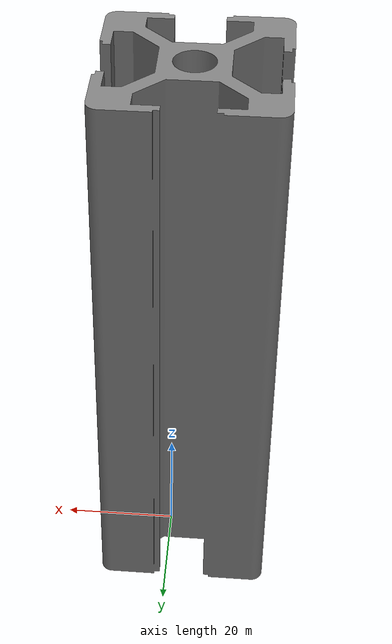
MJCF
<mujoco model="extrusion">
  <default>
    <default class="visual">
      <geom group="1" type="mesh" contype="0" conaffinity="0"/>
    </default>
    <default class="collision">
      <geom group="0" type="mesh"/>
    </default>
  </default>
  <asset>
    <mesh name="extrusion" file="extrusion.obj"/>
    <mesh name="extrusion_collision_0" file="extrusion_collision_0.obj"/>
    <mesh name="extrusion_collision_1" file="extrusion_collision_1.obj"/>
    <mesh name="extrusion_collision_2" file="extrusion_collision_2.obj"/>
    <mesh name="extrusion_collision_3" file="extrusion_collision_3.obj"/>
    <mesh name="extrusion_collision_4" file="extrusion_collision_4.obj"/>
    <mesh name="extrusion_collision_5" file="extrusion_collision_5.obj"/>
    <mesh name="extrusion_collision_6" file="extrusion_collision_6.obj"/>
    <mesh name="extrusion_collision_7" file="extrusion_collision_7.obj"/>
    <mesh name="extrusion_collision_8" file="extrusion_collision_8.obj"/>
    <mesh name="extrusion_collision_9" file="extrusion_collision_9.obj"/>
    <mesh name="extrusion_collision_10" file="extrusion_collision_10.obj"/>
    <mesh name="extrusion_collision_11" file="extrusion_collision_11.obj"/>
    <mesh name="extrusion_collision_12" file="extrusion_collision_12.obj"/>
    <mesh name="extrusion_collision_13" file="extrusion_collision_13.obj"/>
    <mesh name="extrusion_collision_14" file="extrusion_collision_14.obj"/>
    <mesh name="extrusion_collision_15" file="extrusion_collision_15.obj"/>
  </asset>
  <worldbody>
    <body>
      <body name="object">
        <geom mesh="extrusion" class="visual"/>
        <geom type="box" size="0.051 0.015 0.015" pos="0 0.0034 0.0153" class="collision"/>
      </body>
    </body>
  </worldbody>
</mujoco>
